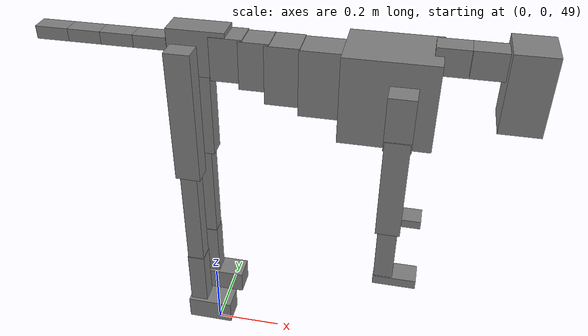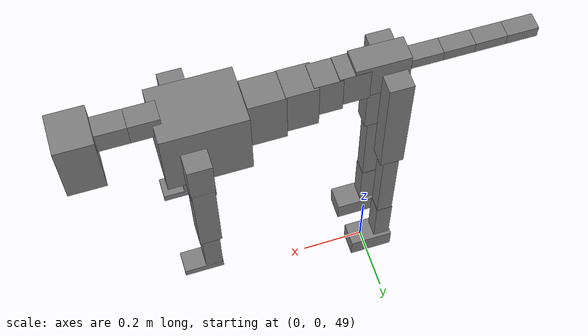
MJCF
<mujoco model="dog">

    <default>
        <joint armature="0.02" stiffness="1" damping="0.2" limited="true"/>
        <geom condim="3" friction="1 0.05 0.05" margin="0.01"/>
        <motor ctrllimited="true" ctrlrange="-1.0 1.0" forcelimited="true" gear="50"/>
    </default>

    <compiler inertiafromgeom="true" angle="radian"/>

    <option timestep="0.016" iterations="50" tolerance="1e-10" solver="Newton" jacobian="dense" cone="pyramidal"/>

    <size nconmax="20000" njmax="60000" nstack="5000000"/>
    <visual>
        <map force="0.1" zfar="30"/>
        <rgba haze="0.15 0.25 0.35 1"/>
        <quality shadowsize="2048"/>
        <global offwidth="800" offheight="800"/>
    </visual>

    <asset>
        <texture type="skybox" builtin="gradient" rgb1="0.3 0.5 0.7" rgb2="0 0 0" width="512" height="512"/>
        <texture name="texplane" type="2d" builtin="checker" rgb1=".2 .3 .4" rgb2=".1 0.15 0.2" width="512" height="512"
                 mark="cross" markrgb=".8 .8 .8"/>
        <texture name="texgeom" type="cube" builtin="flat" mark="cross" width="127" height="1278" rgb1="0.8 0.6 0.4"
                 rgb2="0.8 0.6 0.4" markrgb="1 1 1" random="0.01"/>

        <material name="matplane" reflectance="0.3" texture="texplane" texrepeat="1 1" texuniform="true"/>
        <material name="matgeom" texture="texgeom" texuniform="true" rgba="0.8 0.6 .4 1"/>
    </asset>

    <worldbody>
        <geom name="floor" pos="0 0 0" size="0 0 .25" type="plane" material="matplane" condim="3"/>

        <light directional="false" diffuse=".2 .2 .2" specular="0 0 0" pos="0 0 5" dir="0 0 -1" castshadow="false"/>
        <light mode="targetbodycom" target="torso" directional="false" diffuse=".8 .8 .8" specular="0.3 0.3 0.3"
               pos="0 0 4.0" dir="0 0 -1"/>

        <body name="root" pos="0 0 50">
            <freejoint name="root_1"/>
            <geom type="box" pos="0 0 -0.02" size="0.0774  0.0358  0.063" density="2030"/>

            <body name="spine1" pos="0.054 0 0">
                <joint name="spine1_y" axis="0 1 0" range="0 0.7" limited="true"/>
                <geom type="box" pos="0.02375 0 -0.03" size="0.04375  0.0375  0.05985" density="2030"/>

                <body name="spine2" pos="0.0612 0 0">
                    <joint name="spine2_y" axis="0 1 0" range="-0.15 0.15" limited="true"/>
                    <geom type="box" pos="0.03555  0  -0.04" size="0.04055  0.039  0.06615" density="2030"/>

                    <body name="spine3" pos="0.0730 0 0">
                        <joint name="spine3_y" axis="0 1 0" range="-0.15 0.15" limited="true"/>
                        <geom type="box" pos="0.03555  0  -0.057" size="0.04555  0.0445  0.081" density="2030"/>

                        <body name="spine4" pos="0.0780 0 0">
                            <joint name="spine4_y" axis="0 1 0" range="-0.15 0.15" limited="true"/>
                            <geom type="box" pos="0.05265  0  -0.07" size="0.05265  0.045  0.09135" density="2030"/>

                            <body name="torso" pos="0.1082 0 0">
                                <joint name="torso_y" axis="0 1 0" range="-0.15 0.15" limited="true"/>
                                <geom type="box" pos="0.11925  0  -0.085" size="0.11925  0.085  0.11745"
                                      density="2030"/>

                                <body name="neck1" pos="0.2160  0   0.0180">
                                    <joint name="neck1_y" axis="0 1 0" range="-1.2  -1" limited="true"/>
                                    <geom type="box" pos="0.0423  0  0" size="0.0423  0.03  0.036" density="2325"/>

                                    <body name="neck2" pos="0.0853  0  0">
                                        <joint name="neck2_y" axis="0 1 0" range="0.1  0" limited="true"/>
                                        <geom type="box" pos="0.0423  0  0" size="0.0423  0.03  0.036" density="2325"/>

                                        <body name="head" pos="0.0853  0  0">
                                            <joint name="head_y" axis="0 1 0" range="-0.3  -0.2" limited="true"/>
                                            <geom type="box" pos="0.0531  0  -0.055" size="0.0531  0.06  0.1044"
                                                  density="4030"/>

                                        </body>
                                    </body>
                                </body>

                                <body name="front_shoulder" pos="0.156  0   -0.0480">
                                    <joint name="front_shoulder_y" axis="0 1 0" range="-1 1.5" limited="true"/>
                                    <geom type="box" pos="0 0.13 -0.0448" size="0.0345  0.0295  0.0715" density="1158"/>
                                    <geom type="box" pos="0 -0.13 -0.0448" size="0.0345  0.0295  0.0715"
                                          density="1158"/>

                                    <body name="front_elbow" pos="0  0  -0.0896">
                                        <joint name="front_elbow_y" axis="0 1 0" range="-2 0" limited="true"/>
                                        <geom type="box" pos="0 0.13 -0.1400" size="0.0319  0.0326  0.1400"
                                              density="1081"/>
                                        <geom type="box" pos="0 -0.13 -0.1400" size="0.0319  0.0326  0.1400"
                                              density="1081"/>

                                        <body name="front_wrist" pos="0  0  -0.2800">
                                            <joint name="front_wrist_y" axis="0 1 0" range="-0.2 0" limited="true"/>
                                            <geom type="box" pos="0 0.13 -0.0821" size="0.0254  0.0283  0.0953"
                                                  density="1664"/>
                                            <geom type="box" pos="0 -0.13 -0.0821" size="0.0254  0.0283  0.0953"
                                                  density="1664"/>

                                            <body name="front_finger_end" pos="0  0  -0.1643">
                                                <joint name="front_finger_y" axis="0 1 0" range="-0.4 1"
                                                       limited="true"/>
                                                <geom type="box" pos="0.0316  0.13  0.0019"
                                                      size="0.0579  0.0316  0.0131" density="1515"/>
                                                <geom type="box" pos="0.0316  -0.13  0.0019"
                                                      size="0.0579  0.0316  0.0131" density="1515"/>

                                            </body>

                                        </body>
                                    </body>
                                </body>

                            </body>
                        </body>
                    </body>
                </body>
            </body>

            <body name="back_hip" pos="-0.03 0 -0.018">
                <joint name="back_hip_y" axis="0 1 0" range="-1.5 0.3" limited="true"/>
                <geom type="box" pos="0 0.07 -0.1657" size="0.0351  0.0276  0.1885" density="1154"/>
                <geom type="box" pos="0 -0.07 -0.1657" size="0.0351  0.0276  0.1885" density="1154"/>

                <body name="back_knee" pos="0  0  -0.3315">
                    <joint name="back_knee_y" axis="0 1 0" range="0 2.8" limited="true"/>
                    <geom type="box" pos="0 0.07 -0.1629" size="0.0239  0.0235  0.1785" density="1227"/>
                    <geom type="box" pos="0 -0.07 -0.1629" size="0.0239  0.0235  0.1785" density="1227"/>

                    <body name="back_ankle" pos="0  0  -0.3259">
                        <joint name="back_ankle_y" axis="0 1 0" range="-2.2 0" limited="true"/>
                        <geom type="box" pos="0 0.07 -0.0862" size="0.0253  0.0253  0.0975" density="1284"/>
                        <geom type="box" pos="0 -0.07 -0.0862" size="0.0253  0.0253  0.0975" density="1284"/>

                        <body name="back_toe_end" pos="0  0  -0.1724">
                            <joint name="back_toe_y" axis="0 1 0" range="-0.4 1" limited="true"/>
                            <geom type="box" pos="0.0364  0.07  -0.0196" size="0.0668  0.0364  0.0346" density="1515"/>
                            <geom type="box" pos="0.0364  -0.07  -0.0196" size="0.0668  0.0364  0.0346" density="1515"/>

                        </body>
                    </body>
                </body>
            </body>

            <body name="tail1" pos="-0.074 0 -0.006">
                <joint name="tail1_y" axis="0 1 0" range="-0.2 0.2" limited="true"/>
                <geom type="box" pos="-0.0536  0  0" size="0.045  0.025  0.0175" density="1587"/>

                <body name="tail2" pos="-0.09 0 0">
                    <joint name="tail2_y" axis="0 1 0" range="-0.2 0.2" limited="true"/>
                    <geom type="box" pos="-0.0536  0  0" size="0.045  0.025  0.0175" density="1587"/>

                    <body name="tail3" pos="-0.09 0 0">
                        <joint name="tail3_y" axis="0 1 0" range="-0.2 0.2" limited="true"/>
                        <geom type="box" pos="-0.0536  0  0" size="0.045  0.025  0.0175" density="1587"/>

                        <body name="tail4" pos="-0.09 0 0">
                            <joint name="tail4_y" axis="0 1 0" range="-0.2 0.2" limited="true"/>
                            <geom type="box" pos="-0.0536  0  0" size="0.045  0.025  0.0175" density="1587"/>

                        </body>
                    </body>
                </body>
            </body>
        </body>
    </worldbody>

    <actuator>
        <motor joint="spine1_y" forcerange="-150 150     "/>
        <motor joint="spine2_y" forcerange="-150 150     "/>
        <motor joint="spine3_y" forcerange="-150 150     "/>
        <motor joint="spine4_y" forcerange="-150 150     "/>
        <motor joint="torso_y" forcerange="-150 150     "/>
        <motor joint="neck1_y" forcerange="-100 100       "/>
        <motor joint="neck2_y" forcerange="-100 100       "/>
        <motor joint="head_y" forcerange="-150 150       "/>
        <motor joint="front_shoulder_y" forcerange="-152.48 144.34"/>
        <motor joint="front_elbow_y" forcerange="-171.08 165.86"/>
        <motor joint="front_wrist_y" forcerange="-138.55 87.52"/>
        <motor joint="front_finger_y" forcerange="-68.03 60.52"/>
        <motor joint="back_hip_y" forcerange="-355.66 211.80"/>
        <motor joint="back_knee_y" forcerange="-269.36 273.08"/>
        <motor joint="back_angle_y" forcerange="-211.50 93.61"/>
        <motor joint="back_toe_y" forcerange="-132.89 78.68"/>
        <motor joint="tail1_y" forcerange="-50 50     "/>
        <motor joint="tail2_y" forcerange="-50 50     "/>
        <motor joint="tail3_y" forcerange="-50 50     "/>
        <motor joint="tail4_y" forcerange="-50 50     "/>
    </actuator>
</mujoco>
